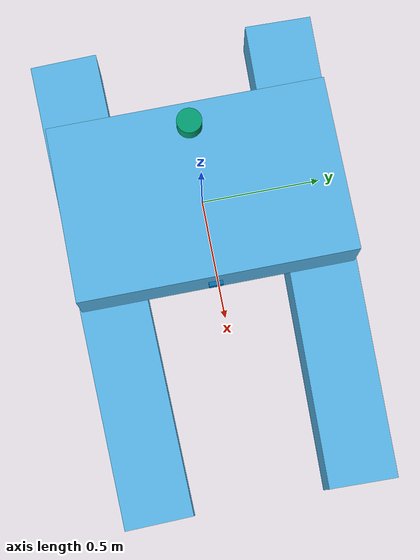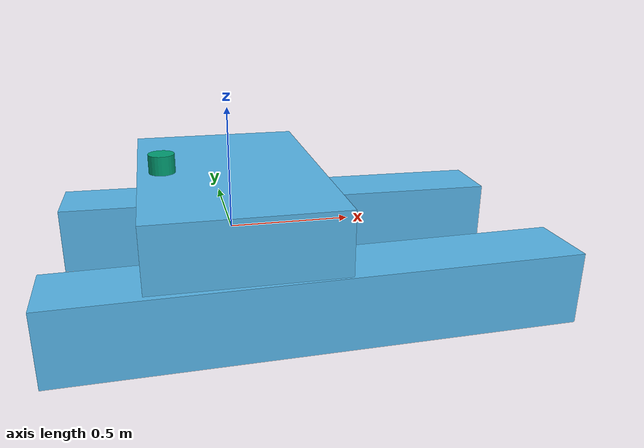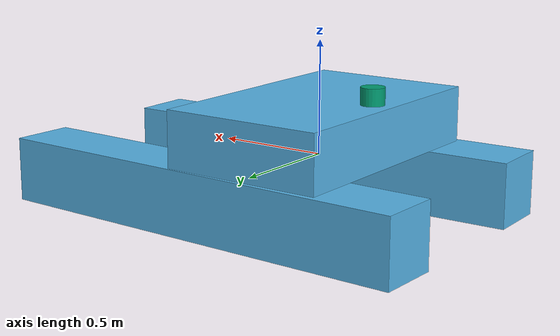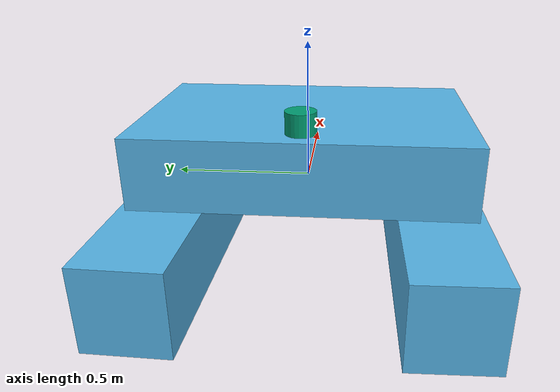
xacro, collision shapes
<?xml version="1.0"?>
<robot xmlns:xacro="http://www.ros.org/wiki/xacro" name="aidboat">

    <xacro:macro name="collisions" params="prefix reflect">
        <collision name="${prefix}_hull">
            <origin xyz="0.273998 ${reflect*(0.447)} -0.146" rpy="0 0 ${reflect*(-0.0244346)}"/>
            <geometry>
                <box size="2.002 0.286 0.292"/>
            </geometry>
        </collision>
    </xacro:macro>

    <link name="dummy">
    </link>

    <link name="base_link">
        <inertial>
            <mass value="32.712"/>
            <origin xyz="0 0.26377 0.02064" rpy="0 0 0"/>
            <inertia ixx="4.662514672" ixy="0" ixz="0" iyy="12.57628507" iyz="0" izz="15.22053986"/>
        </inertial>

        <collision name="top_base">
            <origin xyz="0 0 0.1255" rpy="0 0 0"/>
            <geometry>
                <box size="0.73 1.15767 0.251"/>
            </geometry>
        </collision>

        <xacro:collisions prefix="right" reflect="1"/>
        <xacro:collisions prefix="left" reflect="-1"/>

        <visual>
            <origin rpy="0 0 0" xyz="0 0 0"/>
            <geometry>
                <mesh filename="package://aidboat_description/models/aidboat_base/mesh/AIDBOAT_Base.dae"/>
            </geometry>
        </visual>
    </link>

    <joint name="dummy_joint" type="fixed">
        <parent link="dummy"/>
        <child link="base_link"/>
    </joint>

    <link name="lidar_link">
        <visual name="lidar_visual">
            <origin xyz="0 0 0" rpy="0 0 -1.5708"/>
            <geometry>
                <mesh filename="package://aidboat_gazebo/models/lidar/mesh/lidar.dae"/>
            </geometry>
        </visual>
        <collision name="lidar_collision">
            <origin xyz="0.014 0 0" rpy="0 0 0"/>
            <geometry>
                <cylinder radius="0.0525" length="0.152"/>
            </geometry>
        </collision>
        <inertial>
            <mass value="1.1"/>
            <inertia ixx="0.00478826733" ixy="0.0" ixz="0.0" iyy="0.00414728033" iyz="0.0" izz="0.00249892033"/>
        </inertial>
    </link>

    <joint name="lidar_joint" type="fixed">
        <origin xyz="-0.28 0 0.251" rpy="0 0 0"/>
        <parent link="base_link"/>
        <child link="lidar_link"/>
    </joint>

    <link name="gps_link">
        <visual name="gps_visual">
            <geometry>
                <cylinder radius="0.0775" length="0.081"/>
            </geometry>
            <material name="White">
                <color rgba="1.0 1.0 1.0 1.0"/>
            </material>
        </visual>
        <collision name="gps_collision">
            <geometry>
                <cylinder radius="0.0775" length="0.081"/>
            </geometry>
        </collision>
        <inertial>
            <mass value="0.470"/>
            <inertia ixx="0.00096270687" ixy="0.0" ixz="0.0" iyy="0.00096270687" iyz="0.0" izz="0.00141146875"/>
        </inertial>
    </link>

    <joint name="gps_joint" type="fixed">
        <origin xyz="0.20 0.45 0.0816" rpy="0 0 0"/>
        <parent link="base_link"/>
        <child link="gps_link"/>
    </joint>

    <link name="camera_link">
        <visual name="camera_visual">
            <origin xyz="0 -0.0147 -0.007" rpy="1.5708 0 1.5708"/>
            <geometry>
                <mesh filename="package://aidboat_gazebo/models/camera/mesh/camera.dae"/>
            </geometry>
        </visual>
        <collision name="camera_collision">
            <origin xyz="0.014 -0.0147 -0.007" rpy="0 0 0"/>
            <geometry>
                <box size="0.028 0.0577 0.0403"/>
            </geometry>
        </collision>
        <inertial>
            <mass value="0.116"/>
            <inertia ixx="0.00004788267" ixy="0.0" ixz="0.0" iyy="0.0000397618" iyz="0.0" izz="0.0000232782"/>
        </inertial>
    </link>

    <joint name="camera_joint" type="fixed">
        <origin xyz="0.355 0 0.13" rpy="0 0 0"/>
        <parent link="base_link"/>
        <child link="camera_link"/>
    </joint>

    <link name="imu_link">
        <visual name="imu_visual">
            <geometry>
                <box size="0.024 0.044 0.011"/>
            </geometry>
            <material name="White">
                <color rgba="1.0 1.0 1.0 1.0"/>
            </material>
        </visual>
        <collision name="imu_collision">
            <geometry>
                <box size="0.044 0.024 0.011"/>
            </geometry>
        </collision>
        <inertial>
            <mass value="0.018"/>
            <inertia ixx="0" ixy="0" ixz="0" iyy="0" iyz="0" izz="0"/>
        </inertial>
        </link>

    <joint name="imu_joint" type="fixed">
        <origin xyz="-0.28 0 0.0466" rpy="0 0 0"/>
        <parent link="base_link"/>
        <child link="imu_link"/>
    </joint>
</robot>
